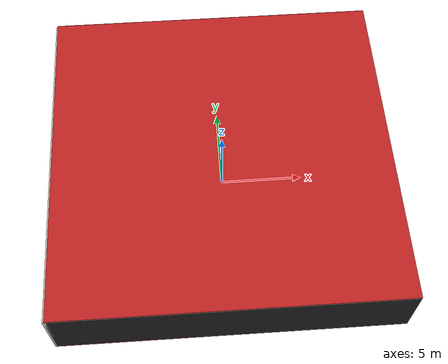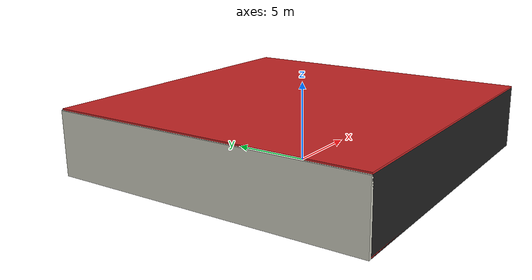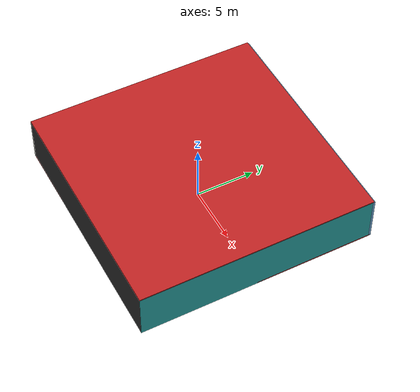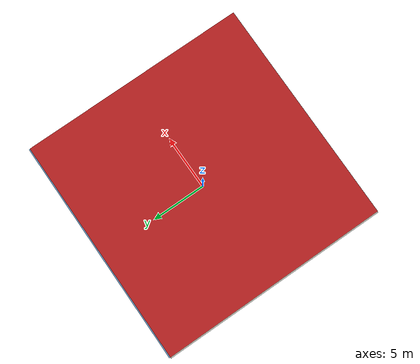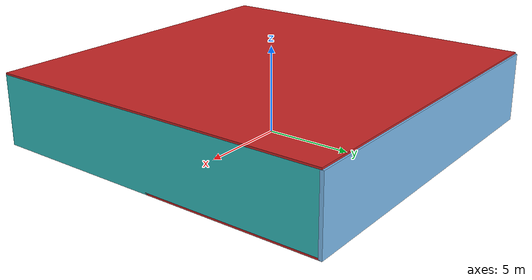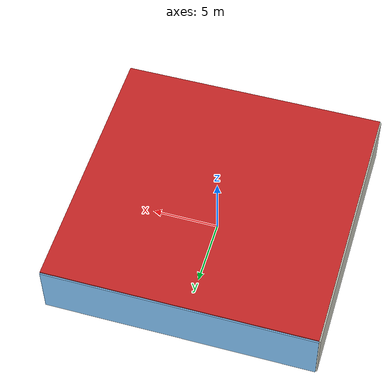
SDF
<sdf version="1.4">
 <world name="default">
  <physics type="ode">
   <max_step_size>0.001</max_step_size>
   <real_time_factor>1</real_time_factor>
   <real_time_update_rate>1000</real_time_update_rate>
   <gravity>0 0 -9.8</gravity>
  </physics>
  <scene><ambient>0.4 0.4 0.4 1</ambient><background>0.7 0.7 0.7 1</background><shadows>1</shadows></scene>
  <model name="Surrounding">
   <static>1</static>
   <link name="Ceiling">
    <collision name="Ceiling_Collision"><geometry><box><size>20 20 0.1</size></box></geometry></collision>
    <visual name="Ceiling_Visual">
     <geometry><box><size>20 20 0.1</size></box></geometry>
     <material>
      <script><uri>file://media/materials/scripts/gazebo.material</uri><name>Gazebo/Red</name></script>
     </material>
    </visual>
    <pose>0 0 4.05 0 0 0</pose>
   </link>
   <link name="Wall_South">
    <collision name="Wall_South_Collision">
     <geometry><box><size>20 0 4</size></box></geometry>
     <pose>0 0 2 0 -0 0</pose>
    </collision>
    <visual name="Wall_South_Visual">
     <pose>0 0 2 0 -0 0</pose>
     <geometry><box><size>20 0 4</size></box></geometry>
     <material>
      <script><uri>file://media/materials/scripts/gazebo.material</uri><name>Gazebo/Black</name></script>
     </material>
    </visual>
    <velocity_decay><linear>0</linear><angular>0</angular></velocity_decay>
    <pose>0 -10 0 0 -0 0</pose>
   </link>
   <link name="Wall_East">
    <collision name="Wall_21_Collision">
     <geometry><box><size>20 0 4</size></box></geometry>
     <pose>0 0 2 0 -0 0</pose>
    </collision>
    <visual name="Wall_21_Visual">
     <pose>0 0 2 0 -0 0</pose>
     <geometry><box><size>20 0 4</size></box></geometry>
     <material>
      <script><uri>file://media/materials/scripts/gazebo.material</uri><name>Gazebo/Turquoise</name></script>
     </material>
    </visual>
    <velocity_decay><linear>0</linear><angular>0</angular></velocity_decay>
    <pose>10 0 0 0 -0 1.5708</pose>
   </link>
   <link name="Wall_North">
    <collision name="Wall_22_Collision">
     <geometry><box><size>20 0.2 4</size></box></geometry>
     <pose>0 0 2 0 -0 0</pose>
    </collision>
    <visual name="Wall_22_Visual">
     <pose>0 0 2 0 -0 0</pose>
     <geometry><box><size>20 0.2 4</size></box></geometry>
     <material>
      <script><uri>file://media/materials/scripts/gazebo.material</uri><name>Gazebo/SkyBlue</name></script>
     </material>
    </visual>
    <velocity_decay><linear>0</linear><angular>0</angular></velocity_decay>
    <pose>0 10 0 0 -0 0</pose>
   </link>
   <link name="Wall_West">
    <collision name="Wall_23_Collision">
     <geometry><box><size>20 0.2 4</size></box></geometry>
     <pose>0 0 2 0 -0 0</pose>
    </collision>
    <visual name="Wall_23_Visual">
     <pose>0 0 2 0 -0 0</pose>
     <geometry><box><size>20 0.2 4</size></box></geometry>
     <material>
      <script><uri>file://media/materials/scripts/gazebo.material</uri><name>Gazebo/PaintedWall</name></script>
     </material>
    </visual>
    <velocity_decay><linear>0</linear><angular>0</angular></velocity_decay>
    <pose>-10 0 0 0 0 -1.5708</pose>
   </link>
   <link name="Ground_link">
    <collision name="collision">
     <pose>0 0 .05 0 -0 0</pose>
     <geometry><box><size>20 20 0.1</size></box></geometry>
    </collision>
    <visual name="visual">
     <pose>0 0 .05 0 -0 0</pose>
     <geometry><box><size>20 20 0.1</size></box></geometry>
     <material>
      <script><uri>file://media/materials/scripts/gazebo.material</uri><name>Gazebo/RedGlow</name></script>
     </material>
    </visual>
   </link>
   <static>1</static>
  </model>
  <spherical_coordinates>
   <surface_model>EARTH_WGS84</surface_model>
   <latitude_deg>0</latitude_deg>
   <longitude_deg>0</longitude_deg>
   <elevation>0</elevation>
   <heading_deg>0</heading_deg>
  </spherical_coordinates>
  <light name="lightball_0" type="diffuse">
   <diffuse>0.8 0.8 0.8 1</diffuse>
   <specular>0.2 0.2 0.2 1</specular>
   <attenuation>
    <range>100</range>
    <constant>0.7</constant>
    <linear>0.01</linear>
    <quadratic>0.001</quadratic>
   </attenuation>
   <direction>-0.5 0.1 -0.9</direction>
   <pose>-2.96160473135 -6.88987428512 2.98911178248 0 0 0</pose>
  </light>
  <light name="lightball_1" type="diffuse">
   <diffuse>0.8 0.8 0.8 1</diffuse>
   <specular>0.2 0.2 0.2 1</specular>
   <attenuation>
    <range>100</range>
    <constant>0.7</constant>
    <linear>0.01</linear>
    <quadratic>0.001</quadratic>
   </attenuation>
   <direction>-0.5 0.1 -0.9</direction>
   <pose>-5.9647101557 -5.36424407838 0.709495583732 0 0 0</pose>
  </light>
  <light name="lightball_2" type="diffuse">
   <diffuse>0.8 0.8 0.8 1</diffuse>
   <specular>0.2 0.2 0.2 1</specular>
   <attenuation>
    <range>100</range>
    <constant>0.7</constant>
    <linear>0.01</linear>
    <quadratic>0.001</quadratic>
   </attenuation>
   <direction>-0.5 0.1 -0.9</direction>
   <pose>-7.65862663568 2.99574642858 0.981500731963 0 0 0</pose>
  </light>
  <light name="lightball_3" type="diffuse">
   <diffuse>0.8 0.8 0.8 1</diffuse>
   <specular>0.2 0.2 0.2 1</specular>
   <attenuation>
    <range>100</range>
    <constant>0.7</constant>
    <linear>0.01</linear>
    <quadratic>0.001</quadratic>
   </attenuation>
   <direction>-0.5 0.1 -0.9</direction>
   <pose>-9.2771631667 7.79906778235 1.16252082986 0 0 0</pose>
  </light>
  <light name="lightball_4" type="diffuse">
   <diffuse>0.8 0.8 0.8 1</diffuse>
   <specular>0.2 0.2 0.2 1</specular>
   <attenuation>
    <range>100</range>
    <constant>0.7</constant>
    <linear>0.01</linear>
    <quadratic>0.001</quadratic>
   </attenuation>
   <direction>-0.5 0.1 -0.9</direction>
   <pose>-0.208991554896 -0.0915177362425 1.44025545826 0 0 0</pose>
  </light>
  <light name="lightball_5" type="diffuse">
   <diffuse>0.8 0.8 0.8 1</diffuse>
   <specular>0.2 0.2 0.2 1</specular>
   <attenuation>
    <range>100</range>
    <constant>0.7</constant>
    <linear>0.01</linear>
    <quadratic>0.001</quadratic>
   </attenuation>
   <direction>-0.5 0.1 -0.9</direction>
   <pose>-3.07031221436 1.33028232596 0.528842966037 0 0 0</pose>
  </light>
  <light name="lightball_6" type="diffuse">
   <diffuse>0.8 0.8 0.8 1</diffuse>
   <specular>0.2 0.2 0.2 1</specular>
   <attenuation>
    <range>100</range>
    <constant>0.7</constant>
    <linear>0.01</linear>
    <quadratic>0.001</quadratic>
   </attenuation>
   <direction>-0.5 0.1 -0.9</direction>
   <pose>0.499743595775 2.37057237574 3.20178977142 0 0 0</pose>
  </light>
  <light name="lightball_7" type="diffuse">
   <diffuse>0.8 0.8 0.8 1</diffuse>
   <specular>0.2 0.2 0.2 1</specular>
   <attenuation>
    <range>100</range>
    <constant>0.7</constant>
    <linear>0.01</linear>
    <quadratic>0.001</quadratic>
   </attenuation>
   <direction>-0.5 0.1 -0.9</direction>
   <pose>-9.63652537679 9.80228928587 2.73145970312 0 0 0</pose>
  </light>
  <light name="lightball_8" type="diffuse">
   <diffuse>0.8 0.8 0.8 1</diffuse>
   <specular>0.2 0.2 0.2 1</specular>
   <attenuation>
    <range>100</range>
    <constant>0.7</constant>
    <linear>0.01</linear>
    <quadratic>0.001</quadratic>
   </attenuation>
   <direction>-0.5 0.1 -0.9</direction>
   <pose>-6.10474913948 3.56711177779 1.2175653175 0 0 0</pose>
  </light>
  <include><uri>model://cabinet</uri><pose>-8.0538286989 1.4775138646 0 0 0 0.710870979486</pose></include>
  <include><uri>model://cabinet</uri><pose>-7.41731359789 4.60472315419 0 0 0 2.74811039378</pose></include>
  <include><uri>model://cabinet</uri><pose>-0.95325716556 7.11534019657 0 0 0 3.00396555241</pose></include>
 </world>
</sdf>

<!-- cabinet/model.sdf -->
<sdf version="1.5">
  <model name="cabinet">
    <static>true</static>
    <link name="cabinet_bottom_plate">
      <inertial>
        <pose>0 0 -1 0 0 0</pose>
        <inertia>
          <ixx>2.050000</ixx>
          <ixy>0</ixy>
          <ixz>0</ixz>
          <iyy>2.050000</iyy>
          <iyz>0</iyz>
          <izz>2.050000</izz>
        </inertia>
        <mass>25.000000</mass>
      </inertial>
      <collision name="cabinet_bottom_plate_geom">
        <pose>0 0 0.010000 0 0 0</pose>
        <geometry>
          <box>
            <size>0.450000 0.450000 0.020000</size>
          </box>
        </geometry>
      </collision>
      <visual name="cabinet_bottom_plate_geom_visual">
        <pose>0 0 0.010000 0 0 0</pose>
        <geometry>
          <box>
            <size>0.450000 0.450000 0.020000</size>
          </box>
        </geometry>
        <material>
          <script>
            <uri>model://media/materials/scripts/gazebo.material</uri>
            <name>Gazebo/Wood</name>
          </script>
        </material>
      </visual>
      <collision name="cabinet_bottom_plate_geom_cabinet_back_plate">
        <pose>0.235000 0 0.510000 0 0 0</pose>
        <geometry>
          <box>
            <size>0.020000 0.450000 1.020000</size>
          </box>
        </geometry>
      </collision>
      <visual name="cabinet_bottom_plate_geom_cabinet_back_plate_visual">
        <pose>0.235000 0 0.510000 0 0 0</pose>
        <geometry>
          <box>
            <size>0.020000 0.450000 1.020000</size>
          </box>
        </geometry>
        <material>
          <script>
            <uri>model://media/materials/scripts/gazebo.material</uri>
            <name>Gazebo/Wood</name>
          </script>
        </material>
      </visual>
      <collision name="cabinet_bottom_plate_geom_cabinet_left_plate">
        <pose>0 0.235000 0.510000 0 0 0</pose>
        <geometry>
          <box>
            <size>0.450000 0.020000 1.020000</size>
          </box>
        </geometry>
      </collision>
      <visual name="cabinet_bottom_plate_geom_cabinet_left_plate_visual">
        <pose>0 0.235000 0.510000 0 0 0</pose>
        <geometry>
          <box>
            <size>0.450000 0.020000 1.020000</size>
          </box>
        </geometry>
        <material>
          <script>
            <uri>model://media/materials/scripts/gazebo.material</uri>
            <name>Gazebo/Wood</name>
          </script>
        </material>
      </visual>
      <collision name="cabinet_bottom_plate_geom_cabinet_middle_plate">
        <pose>0 0 0.510000 0 0 0</pose>
        <geometry>
          <box>
            <size>0.450000 0.450000 0.020000</size>
          </box>
        </geometry>
      </collision>
      <visual name="cabinet_bottom_plate_geom_cabinet_middle_plate_visual">
        <pose>0 0 0.510000 0 0 0</pose>
        <geometry>
          <box>
            <size>0.450000 0.450000 0.020000</size>
          </box>
        </geometry>
        <material>
          <script>
            <uri>model://media/materials/scripts/gazebo.material</uri>
            <name>Gazebo/Wood</name>
          </script>
        </material>
      </visual>
      <collision name="cabinet_bottom_plate_geom_cabinet_right_plate">
        <pose>0 -0.235000 0.510000 0 0 0</pose>
        <geometry>
          <box>
            <size>0.450000 0.020000 1.020000</size>
          </box>
        </geometry>
      </collision>
      <visual name="cabinet_bottom_plate_geom_cabinet_right_plate_visual">
        <pose>0 -0.235000 0.510000 0 0 0</pose>
        <geometry>
          <box>
            <size>0.450000 0.020000 1.020000</size>
          </box>
        </geometry>
        <material>
          <script>
            <uri>model://media/materials/scripts/gazebo.material</uri>
            <name>Gazebo/Wood</name>
          </script>
        </material>
      </visual>
      <collision name="cabinet_bottom_plate_geom_cabinet_top_plate">
        <pose>0 0 1.010000 0 0 0</pose>
        <geometry>
          <box>
            <size>0.450000 0.450000 0.020000</size>
          </box>
        </geometry>
      </collision>
      <visual name="cabinet_bottom_plate_geom_cabinet_top_plate_visual">
        <pose>0 0 1.010000 0 0 0</pose>
        <geometry>
          <box>
            <size>0.450000 0.450000 0.020000</size>
          </box>
        </geometry>
        <material>
          <script>
            <uri>model://media/materials/scripts/gazebo.material</uri>
            <name>Gazebo/Wood</name>
          </script>
        </material>
      </visual>
    </link>
  </model>
</sdf>
